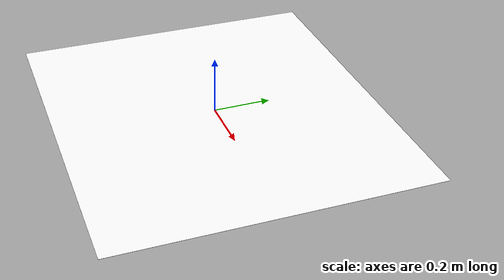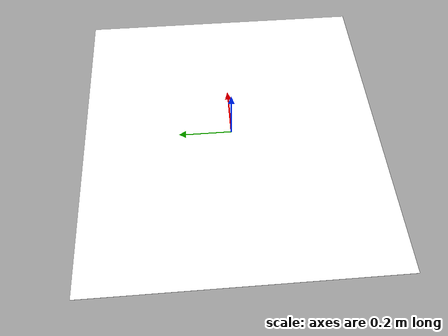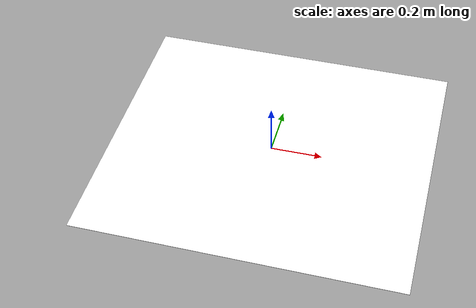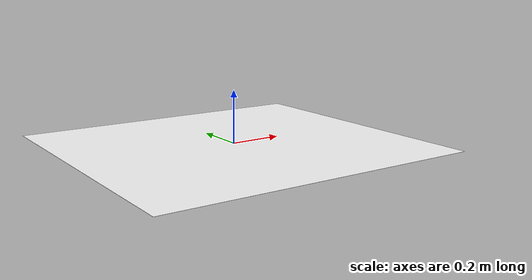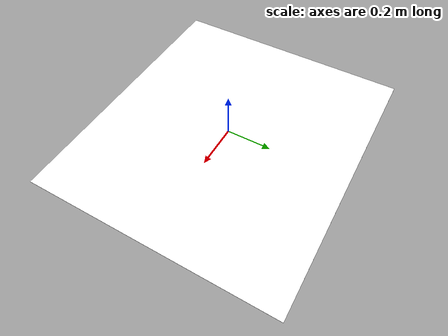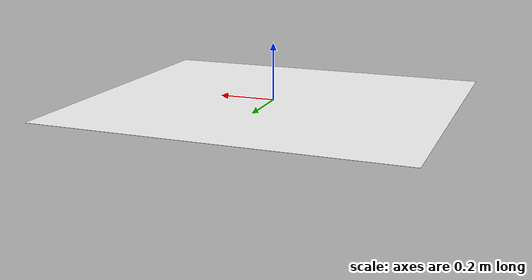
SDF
<?xml version='1.0'?>
<sdf version='1.6'>
  <model name='race_track12'>
    <static>true</static>
    <link name='link'>
      <visual name='visual'>
        <geometry>
          <box>
            <size>1.244 1.112 0.000553</size>
          </box>
        </geometry>
        <material>
          <script>
            <name>RaceTrack12/track12</name>
	    <uri>model://racetrack12/materials/scripts</uri>
            <uri>model://racetrack12/materials/textures</uri>
          </script>
          <ambient>1 1 1 1</ambient>
          <diffuse>1 1 1 1</diffuse>
          <specular>0.01 0.01 0.01 1</specular>
          <emissive>1 1 1 1</emissive>
        </material>
        <transparency>0</transparency>
      </visual>
      <collision name='collision'>
        <geometry>
          <box>
            <size>1.244 1.112 0.000553</size>
          </box>
        </geometry>
	<surface>
          <friction>
            <ode>
              <mu>100</mu>
              <mu2>50</mu2>
            </ode>
          </friction>
        </surface>
      </collision>
    </link>
  </model>
</sdf>
